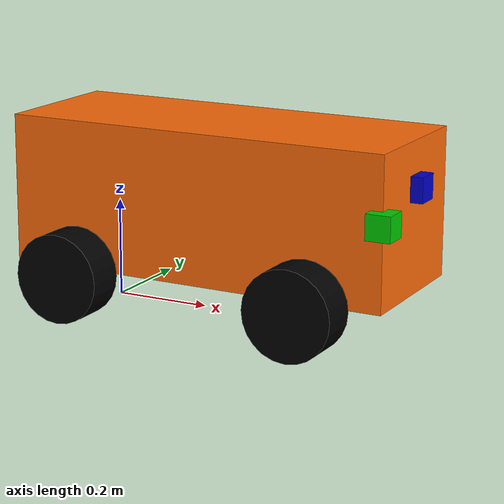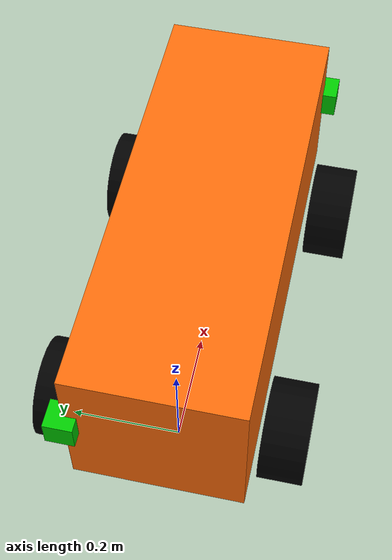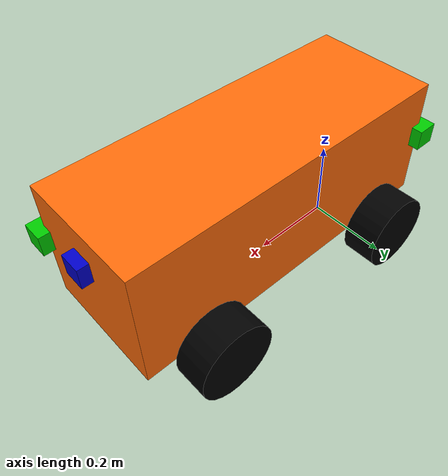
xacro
<?xml version="1.0"?>
<robot name="furbot"
    xmlns:xacro="http://www.ros.org/wiki/xacro">

    <xacro:property name="PI" value="3.1415926535897931"/>

    <xacro:property name="chassisHeight" value="0.3"/>
    <xacro:property name="chassisLength" value="0.8"/>
    <xacro:property name="chassisWidth" value="0.3"/>
    <xacro:property name="chassisMass" value="50"/>

    <xacro:property name="casterRadius" value="0.05"/>
    <xacro:property name="casterMass" value="5"/>

    <xacro:property name="wheelWidth" value="0.08"/>
    <xacro:property name="wheelRadius" value="0.09"/>
    <xacro:property name="wheelPos" value="0.65"/>
    <xacro:property name="wheelMass" value="5"/>

    <xacro:property name="cameraSize" value="0.05"/>
    <xacro:property name="cameraMass" value="0.1"/>

    <xacro:include filename="$(find furbot_description)/urdf/furbot.gazebo" />
    <xacro:include filename="$(find furbot_description)/urdf/materials.xacro" />
    <xacro:include filename="$(find furbot_description)/urdf/macros.xacro" />

    <link name='chassis'>
        <collision>
            <origin xyz="0 0 ${wheelRadius + chassisHeight/2}" rpy="0 0 0"/>
            <geometry>
                <box size="${chassisLength} ${chassisWidth} ${chassisHeight}"/>
            </geometry>
        </collision>
        <visual>
            <origin xyz="0 0 ${wheelRadius + chassisHeight/2}" rpy="0 0 0"/>
            <geometry>
                <box size="${chassisLength} ${chassisWidth} ${chassisHeight}"/>
            </geometry>
            <material name="orange"/>
        </visual>
        <inertial>
            <origin xyz="0 0 ${wheelRadius + chassisHeight/2}" rpy="0 0 0"/>
            <mass value="${chassisMass}"/>
            <box_inertia m="${chassisMass}" x="${chassisLength}" y="${chassisWidth}" z="${chassisHeight}"/>
        </inertial>
    </link>

    <link name="footprint" />

    <joint name="base_joint" type="fixed">
        <origin xyz="${-chassisLength/2 + wheelPos} 0.0 0" rpy="0.0 0.0 0.0"/>
        <parent link="footprint"/>
        <child link="chassis"/>
    </joint>

    <rear_wheel lr="right" tY="-1" />
    <rear_wheel lr="left" tY="1" />

    <front_wheel lr="right" tY="-1" />
    <front_wheel lr="left" tY="1" />

    <link name="furbot_camera">
        <collision>
            <origin xyz="0 0 0" rpy="0 0 0"/>
            <geometry>
                <box size="${cameraSize} ${cameraSize} ${cameraSize}"/>
            </geometry>
        </collision>

        <visual>
            <origin xyz="0 0 0" rpy="0 0 0"/>
            <geometry>
                <box size="${cameraSize} ${cameraSize} ${cameraSize}"/>
            </geometry>
            <material name="blue"/>
        </visual>

        <inertial>
            <mass value="${cameraMass}" />
            <origin xyz="0 0 0" rpy="0 0 0"/>
            <box_inertia m="${cameraMass}" x="${cameraSize}" y="${cameraSize}" z="${cameraSize}" />
        </inertial>
    </link>

    <joint name="camera_joint" type="fixed">
        <origin xyz="${chassisLength/2} 0.0 ${chassisHeight}" rpy="0.0 0.0 0.0"/>
        <parent link="chassis"/>
        <child link="furbot_camera"/>
    </joint>

    <link name="base_laser_link_front">
        <visual>
            <origin xyz="0 0 0" rpy="0 0 0"/>
            <geometry>
                <box size="0.05 0.05 0.05" />
            </geometry>
            <material name="green" />
        </visual>
        <inertial>
            <mass value="0.000001" />
            <origin xyz="0 0 0" />
            <inertia ixx="0.0001" ixy="0.0" ixz="0.0" iyy="0.0001" iyz="0.0" izz="0.0001" />
        </inertial>
    </link>

    <joint name="laser1" type="fixed">
        <origin xyz="${chassisLength/2 + 0.001} ${-chassisWidth/2 - 0.001} ${wheelRadius*2 + 0.08}" rpy="0 0 0" />
        <parent link="chassis" />
        <child link="base_laser_link_front" />
    </joint>

     <link name="base_laser_link_rear">
        <visual>
            <origin xyz="0 0 0" rpy="0 0 ${PI}"/>
            <geometry>
                <box size="0.05 0.05 0.05" />
            </geometry>
            <material name="green" />
        </visual>
        <inertial>
            <mass value="0.000001" />
            <origin xyz="0 0 0" />
            <inertia ixx="0.0001" ixy="0.0" ixz="0.0" iyy="0.0001" iyz="0.0" izz="0.0001" />
        </inertial>
    </link>

    <joint name="laser2" type="fixed">
        <origin xyz="-${chassisLength/2 - 0.001} ${chassisWidth/2 +0.001}  ${wheelRadius*2 + 0.08}" rpy="0 0 ${PI}" />
        <parent link="chassis" />
        <child link="base_laser_link_rear" />
    </joint>

</robot>

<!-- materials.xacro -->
<robot name="furbot"
    xmlns:xacro="http://www.ros.org/wiki/xacro">

    <material name="black">
        <color rgba="0.0 0.0 0.0 1.0"/>
    </material>
    <material name="blue">
        <color rgba="0.0 0.0 0.8 1.0"/>
    </material>
    <material name="green">
        <color rgba="0.0 0.8 0.0 1.0"/>
    </material>
    <material name="grey">
        <color rgba="0.2 0.2 0.2 1.0"/>
    </material>
    <material name="orange">
        <color rgba="${255/255} ${108/255} ${10/255} 1.0"/>
    </material>
    <material name="brown">
        <color rgba="${222/255} ${207/255} ${195/255} 1.0"/>
    </material>
    <material name="red">
        <color rgba="0.79 0.17 0.0 1.0"/>
    </material>
    <material name="white">
        <color rgba="1.0 1.0 1.0 1.0"/>
    </material>

</robot>

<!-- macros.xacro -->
<robot name="furbot"
    xmlns:xacro="http://www.ros.org/wiki/xacro">

    <!-- PARAMETERS SETTINGS: INERTIA OF ALL KIND OF GEOMETRY OBJECT -->

    <macro name="cylinder_inertia" params="m r h">
        <inertia ixx="${m*(3*r*r+h*h)/12}" ixy = "0" ixz = "0" iyy="${m*(3*r*r+h*h)/12}" iyz = "0" izz="${m*r*r/2}" />
    </macro>

    <macro name="box_inertia" params="m x y z">
        <inertia ixx="${m*(y*y+z*z)/12}" ixy = "0" ixz = "0" iyy="${m*(x*x+z*z)/12}" iyz = "0" izz="${m*(x*x+z*z)/12}" />
    </macro>

    <macro name="sphere_inertia" params="m r">
        <inertia ixx="${2*m*r*r/5}" ixy = "0" ixz = "0" iyy="${2*m*r*r/5}" iyz = "0" izz="${2*m*r*r/5}" />
    </macro>

    <!-- REAR WHEEL MACROS -->

    <macro name="rear_wheel" params="lr tY">

        <link name="${lr}_rear_wheel">
            <collision>
                <origin xyz="0 0 0" rpy="0 ${PI/2} ${PI/2}" />
                <geometry>
                    <cylinder length="${wheelWidth}" radius="${wheelRadius}"/>
                </geometry>
            </collision>

            <visual>
                <origin xyz="0 0 0" rpy="0 ${PI/2} ${PI/2}" />
                <geometry>
                    <cylinder length="${wheelWidth}" radius="${wheelRadius}"/>
                </geometry>
                <material name="black"/>
            </visual>

            <inertial>
                <origin xyz="0 0 0" rpy="0 ${PI/2} ${PI/2}" />
                <mass value="${wheelMass}"/>
                <cylinder_inertia m="${wheelMass}" r="${wheelRadius}" h="${wheelWidth}"/>
            </inertial>
        </link>

        <gazebo reference="${lr}_rear_wheel">
            <material>Gazebo/Black</material>
        </gazebo>

        <joint name="${lr}_rear_wheel_hinge" type="continuous">
            <parent link="chassis"/>
            <child link="${lr}_rear_wheel"/>
            <origin xyz="${-wheelPos+chassisLength/2} ${tY*wheelWidth/2+tY*0.01+tY*chassisWidth/2} ${wheelRadius}" rpy="0 0 0" />
            <axis xyz="0 1 0" rpy="0 0 0" />
            <limit effort="100" velocity="100"/>
            <joint_properties damping="0.0" friction="0.0"/>
        </joint>

        <transmission name="${lr}_rear_trans">
            <type>transmission_interface/SimpleTransmission</type>
            <joint name="${lr}_rear_wheel_hinge">
                <hardwareInterface>hardware_interface/VelocityJointInterface</hardwareInterface>
            </joint>
            <actuator name="${lr}_rear_Motor">
                <mechanicalReduction>10</mechanicalReduction>
                <hardwareInterface>hardware_interface/VelocityJointInterface</hardwareInterface>
            </actuator>
        </transmission>

    </macro>

    <!-- FRONT WHEEL MACRO -->

    <macro name="front_wheel" params="lr tY">

        <link name="${lr}_front_wheel">
            <collision>
                <origin xyz="0 0 0" rpy="0 ${PI/2} ${PI/2}" />
                <geometry>
                    <cylinder length="${wheelWidth}" radius="${wheelRadius}"/>
                </geometry>
            </collision>

            <visual>
                <origin xyz="0 0 0" rpy="0 ${PI/2} ${PI/2}" />
                <geometry>
                    <cylinder length="${wheelWidth}" radius="${wheelRadius}"/>
                </geometry>
                <material name="black"/>
            </visual>

            <inertial>
                <origin xyz="0 0 0" rpy="0 ${PI/2} ${PI/2}" />
                <mass value="${wheelMass}"/>
                <cylinder_inertia m="${wheelMass}" r="${wheelRadius}" h="${wheelWidth}"/>
            </inertial>
        </link>

        <gazebo reference="${lr}_front_wheel">
            <material>Gazebo/Black</material>
        </gazebo>

        <link name="${lr}_steer">
            <visual>
                <origin xyz="0 0 0" rpy="0 0 0" />
                <geometry>
                    <box size="0.06 0.06 0.06" />
                </geometry>
            </visual>

            <inertial>
                <origin xyz="0 0 0" rpy="0 0 0" />
                <mass value="1"/>
                <box_inertia m="1" x="0.06" y="0.06" z="0.06"/>
            </inertial>

        </link>

        <gazebo reference="${lr}_steer">
            <material>Gazebo/Black</material>
        </gazebo>

        <joint name="${lr}_steer_joint" type="revolute">
            <origin xyz="${wheelPos-chassisLength/2}  ${tY*wheelWidth/2+tY*0.01+tY*chassisWidth/2}  ${wheelRadius}" rpy="0.0 0.0 0.0"/>
            <parent link="chassis"/>
            <child link="${lr}_steer"/>
            <axis xyz="0 0 1"/>
            <limit lower="-2" upper="2" effort="100" velocity="100"/>
        </joint>>

        <joint name="${lr}_front_wheel_hinge" type="continuous">
            <origin xyz="0 0 0" rpy="0 0 0" />
            <parent link="${lr}_steer" />
            <child link="${lr}_front_wheel" />
            <axis xyz="0 1 0" />
            <limit effort="100" velocity="100" />
        </joint>

        <transmission name="${lr}_front_trans">
            <type>transmission_interface/SimpleTransmission</type>
            <joint name="${lr}_steer_joint">
                <hardwareInterface>hardware_interface/PositionJointInterface </hardwareInterface>
            </joint>
            <actuator name="${lr}_front_Motor">
                <mechanicalReduction>10</mechanicalReduction>
                <hardwareInterface>hardware_interface/PositionJointInterface </hardwareInterface>
            </actuator>
        </transmission>

    </macro>

    <!-- CASTOR WHEELS MACRO -->

    <macro name="front_castor_wheel">
        <joint name="fixed" type="fixed">
            <parent link="chassis"/>
            <child link="castor_wheel"/>
        </joint>

        <link name="castor_wheel">
            <collision>
                <origin xyz="${chassisLength/2-casterRadius} 0 ${casterRadius-chassisHeight+wheelRadius}" rpy="0 0 0"/>
                <geometry>
                    <sphere radius="${casterRadius}"/>
                </geometry>
            </collision>

            <visual>
                <origin xyz="${chassisLength/2-casterRadius} 0 ${casterRadius-chassisHeight+wheelRadius}" rpy="0 0 0"/>
                <geometry>
                    <sphere radius="${casterRadius}"/>
                </geometry>
                <material name="red"/>
            </visual>

            <inertial>
                <origin xyz="${chassisLength/2-casterRadius} 0 ${casterRadius-chassisHeight+wheelRadius}" rpy="0 0 0"/>
                <mass value="${casterMass}"/>
                <sphere_inertia m="${casterMass}" r="${casterRadius}"/>
            </inertial>
        </link>
    </macro>
</robot>
